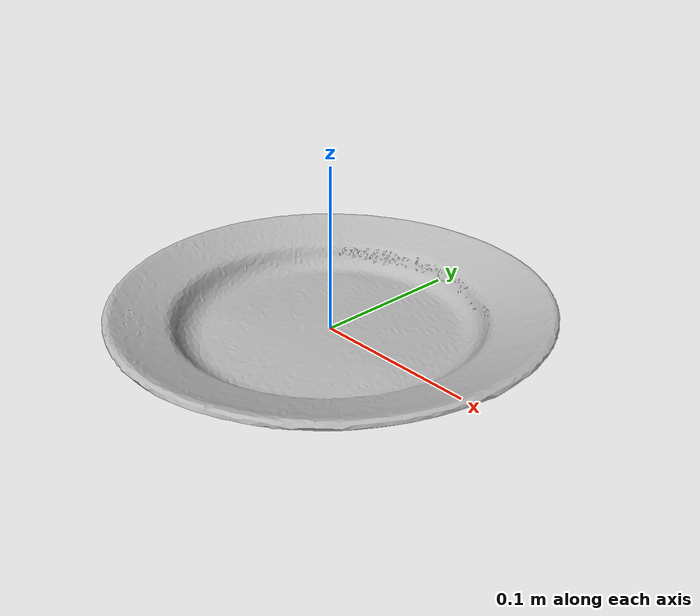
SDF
<?xml version="1.0" ?>
<sdf version='1.8'>
  <model name='ycb_029_plate'>
    <link name='body'>
      <inertial>
        <mass>0.279</mass>
        <pose>0.00173502742 0.000994939871 0.0120116924 0 0 0</pose>
        <inertia>
          <ixx>0.00127503344262</ixx>
          <ixy>-4.05588204411e-06</ixy>
          <ixz>-6.4262931521e-06</ixz>
          <iyy>0.00128091240096</iyy>
          <iyz>-9.5931463023e-06</iyz>
          <izz>0.00250630102286</izz>
        </inertia>
      </inertial>
      <visual name='ycb_029_plate_visual'>
        <pose>0.011741 -0.000252 0.003162 0 0 0</pose>
        <geometry>
          <mesh>
            <uri>model://ycb_029_plate/meshes/textured.dae</uri>
          </mesh>
        </geometry>
      </visual>
      <collision name='ycb_029_plate_collision'>
        <pose>0.011741 -0.000252 0.003162 0 0 0</pose>
        <geometry>
          <mesh>
            <uri>model://ycb_029_plate/meshes/nontextured.stl</uri>
          </mesh>
        </geometry>
        <max_contacts>10</max_contacts>
        <surface>
          <contact>
            <ode>
              <kp>1e15</kp>
              <kd>1e13</kd>
            </ode>
          </contact>
        </surface>
      </collision>
    </link>
  </model>
</sdf>
